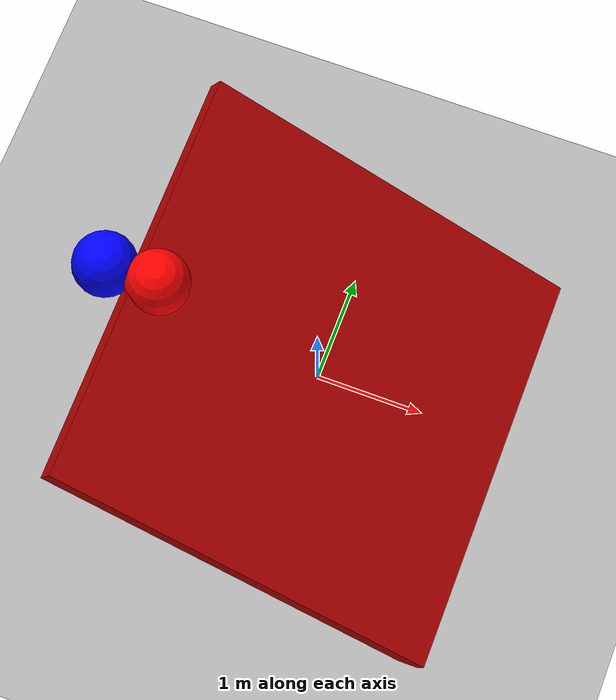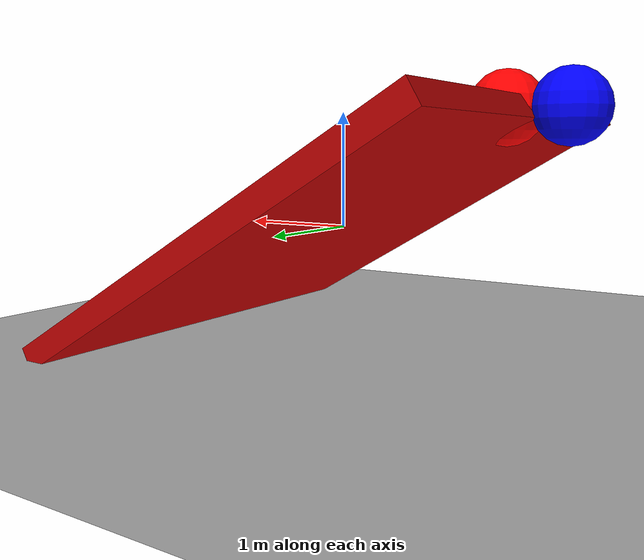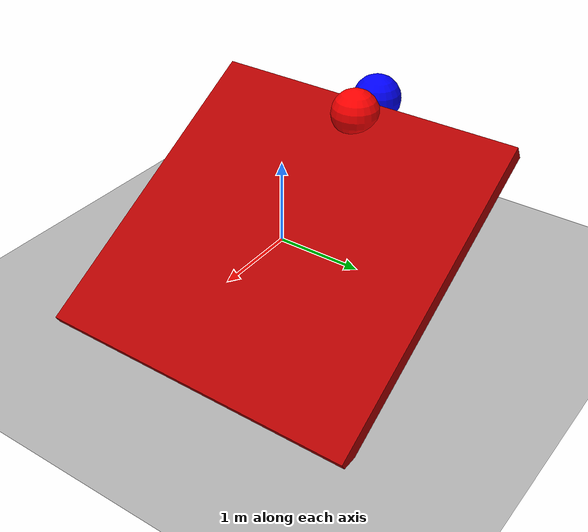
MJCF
<mujoco>
    <option gravity="0 0 -9.81"/>
    <worldbody>
        <light diffuse="0.5 0.5 0.5" pos="0 0 3" dir="0 0 -1"/>

        <!-- Inclined Plane (now a box rotated to act as ramp) -->
        <body name="object_4" pos="0 0 0">
            <!-- 30-degree tilt around y-axis -->
            <geom type="box" size="2 2 0.1" rgba="0.7 0 0 1" friction="1 1 1" quat="0.9659 0 0.2588 0"/>
        </body>

        <!-- Ground Plane -->
        <body name="object_3" pos="0 0 -1">
            <geom type="plane" size="30 30 0.1" rgba="0.7 0.7 0.7 1" friction="1 1 1"/>
        </body>

        <!-- Solid Sphere (red) -->
        <body name="object_1" pos="-1.5 0 1">
            <geom type="sphere" size="0.3" mass="1.0" rgba="1 0 0 1"/>
            <joint name="object_1_joint" type="free"/>
        </body>

        <!-- Hollow Sphere (blue) -->
        <body name="object_2" pos="-2.0 0 1">
            <geom type="sphere" size="0.3" mass="1.0" rgba="0 0 1 1"/>
            <joint name="object_2_joint" type="free"/>
            <!-- Remove the 'inertia' element entirely -->
        </body>
    </worldbody>
</mujoco>
